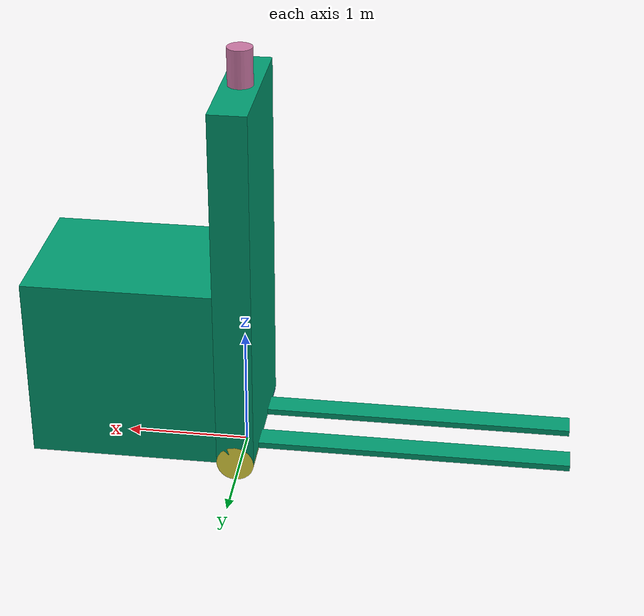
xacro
<?xml version="1.0"?>
<robot name="agv_3Dlidar" xmlns:xacro="http://www.ros.org/wiki/xacro">

    <!-- Constants for robot dimensions -->
    <xacro:property name="PI" value="3.1415926535897931"/>
    <xacro:property name="chassis_x" value="1.5" /> <!-- length=1.5 meters -->
    <xacro:property name="chassis_y" value="1.2" /> <!-- width=1.2 meters -->
    <xacro:property name="chassis_z" value="1.5" /> <!-- height=1.5 meters-->

    <xacro:property name="mast_x" value="0.3" /> <!-- length=0.3 meters -->
    <xacro:property name="mast_z" value="3.0" /> <!-- height=3.0 meters-->

    <xacro:property name="fork_x" value="2.5" /> <!-- length=2.5 meters-->
    <xacro:property name="fork_y" value="0.2" /> <!-- width=0.2 meters-->
    <xacro:property name="fork_z" value="0.05" /> <!-- height=0.05 meters-->
    <xacro:property name="fork_y_offset" value="0.15" /> <!-- offset from center=0.15 meters-->

    <xacro:property name="wheel_rad" value="0.15" /> <!-- radius=0.15 meters-->
    <xacro:property name="wheel_len" value="0.30" /> <!-- length=0.30 meters-->

    <xacro:macro name="visual_collision_template" params="x y z *shape">
        <visual>
        <origin xyz="${x} ${y} ${z}" rpy="0 0 0"/>
        <geometry>
            <xacro:insert_block name="shape" />
        </geometry>
        </visual>

        <collision>
        <origin xyz="${x} ${y} ${z}" rpy="0 0 0"/>
        <geometry>
            <xacro:insert_block name="shape" />
        </geometry>
        </collision>
    </xacro:macro>
    <xacro:macro name="wheel_template" params="name x y rad len">
        <joint name="chassis_${name}_joint" type="fixed">
            <parent link="chassis"/>
            <child link="${name}"/>
            <origin xyz="${x} ${y} 0.0" rpy="${PI/2} 0 0"/>
        </joint>

        <link name="${name}">
            <xacro:visual_collision_template x="0.0" y="0.0" z="0.0">
                <cylinder radius="${rad}" length="${len}" />
            </xacro:visual_collision_template>

            <inertial>
            <origin xyz="0 0 0" rpy="0 0 0"/>
            <mass value="1"/>
            <inertia ixx="0.0145833" ixy="0" ixz="0"
                    iyy="0.0145833" iyz="0"
                    izz="0.0125" />
            </inertial>
        </link>
    </xacro:macro>

    <!-- AGV Description Starts -->
    <link name="world"/>
    <joint name="base_world_joint" type="fixed">
        <parent link="world"/>
        <child link="base_CoordSys"/>
        <origin xyz="0.0 0.0 0.0" rpy="0 0 0"/>
    </joint>

    <link name="base_CoordSys"/>
    <joint name="base_chassis_joint" type="fixed">
        <parent link="base_CoordSys"/>
        <child link="chassis"/>
        <origin xyz="0.0 0.0 ${wheel_rad}" rpy="0 0 0"/>
    </joint>

    <!-- AGV Chassis -->
    <link name="chassis">
        <!-- Box representing AGV body which contains battery, electronics, etc. -->
        <xacro:visual_collision_template x="0.0" y="0.0" z="${mast_z/2}">
            <box size="${mast_x} ${chassis_y} ${mast_z}"/>
        </xacro:visual_collision_template>

        <!-- Box representing AGV mast -->
        <xacro:visual_collision_template x="${(mast_x+chassis_x)/2}" y="0.0" z="${chassis_z/2}">
            <box size="${chassis_x} ${chassis_y} ${chassis_z}"/>
        </xacro:visual_collision_template>

        <!-- Box representing AGV forks -->
        <xacro:visual_collision_template x="${-(mast_x+fork_x)/2}" y="${fork_y_offset+fork_y/2}" z="${fork_z/2}">
            <box size="${fork_x} ${fork_y} ${fork_z}"/>
        </xacro:visual_collision_template>
        <xacro:visual_collision_template x="${-(mast_x+fork_x)/2}" y="${-(fork_y_offset+fork_y/2)}" z="${fork_z/2}">
            <box size="${fork_x} ${fork_y} ${fork_z}"/>
        </xacro:visual_collision_template>

        <inertial>
        <origin xyz="0 0 0" rpy="0 0 0"/>
        <mass value="100"/>
        <inertia ixx="60" ixy="0" ixz="0"
                iyy="60" iyz="0"
                izz="60" />
        </inertial>
    </link>

    <!-- AGV Wheels -->
    <xacro:wheel_template name="wheelL" x="0" y="${(chassis_y-wheel_len)/2}" rad="${wheel_rad}" len="${wheel_len}"/>
    <xacro:wheel_template name="wheelR" x="0" y="${-(chassis_y-wheel_len)/2}" rad="${wheel_rad}" len="${wheel_len}"/>
    <xacro:wheel_template name="wheelC" x="${chassis_x}" y="0" rad="${wheel_rad}" len="${wheel_len}"/>

    <!-- AGV Lidar Sensor -->
    <joint name="chassis_lidar_joint" type="fixed">
        <parent link="chassis"/>
        <child link="lidar"/>
        <origin xyz="0.0 0.0 ${mast_z+.15}" rpy="0 0 0"/>
    </joint>
    <link name="lidar">
        <xacro:visual_collision_template x="0.0" y="0.0" z="0.0">
            <cylinder radius="0.1" length="0.3" />
        </xacro:visual_collision_template>
    </link>

</robot>
